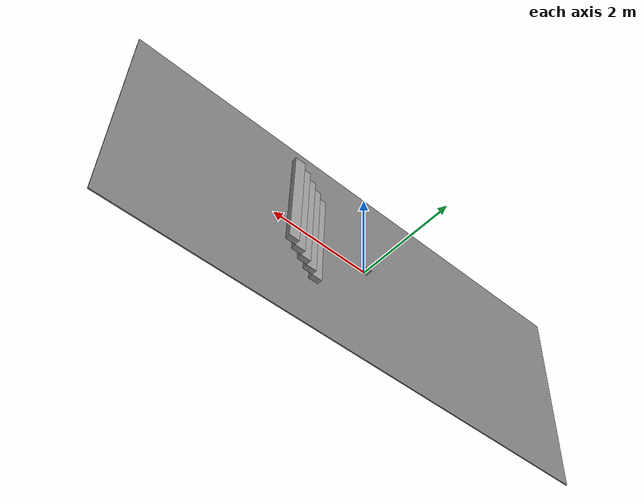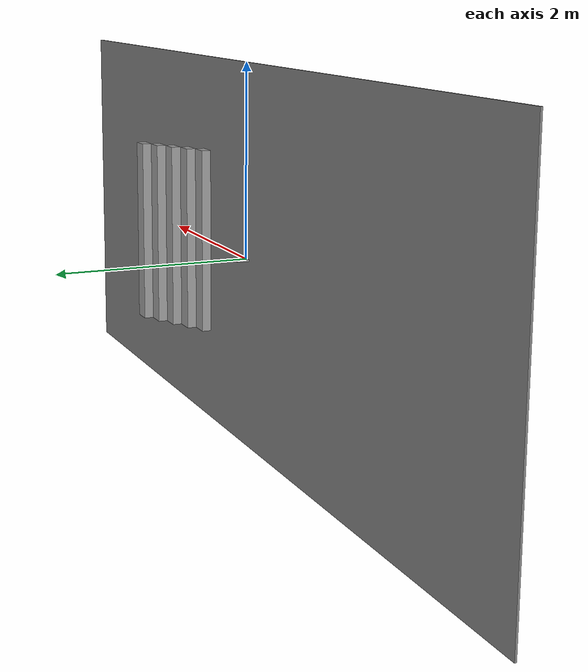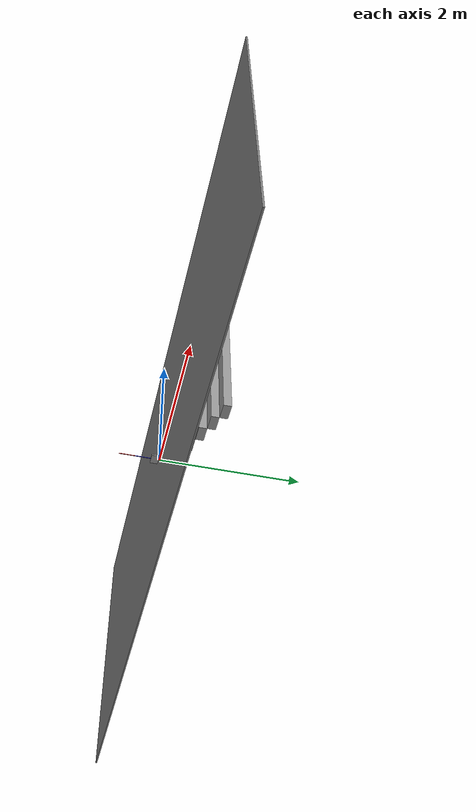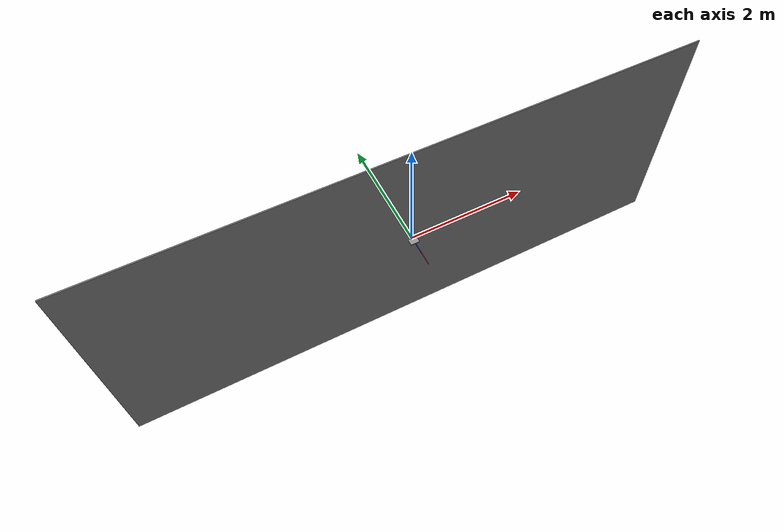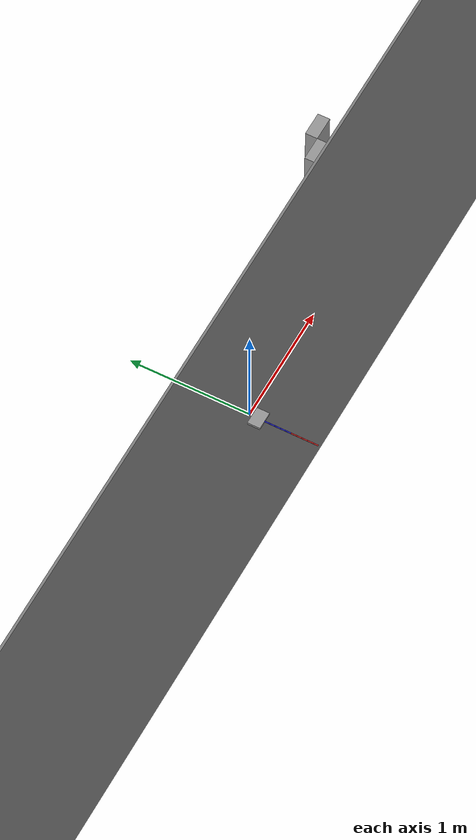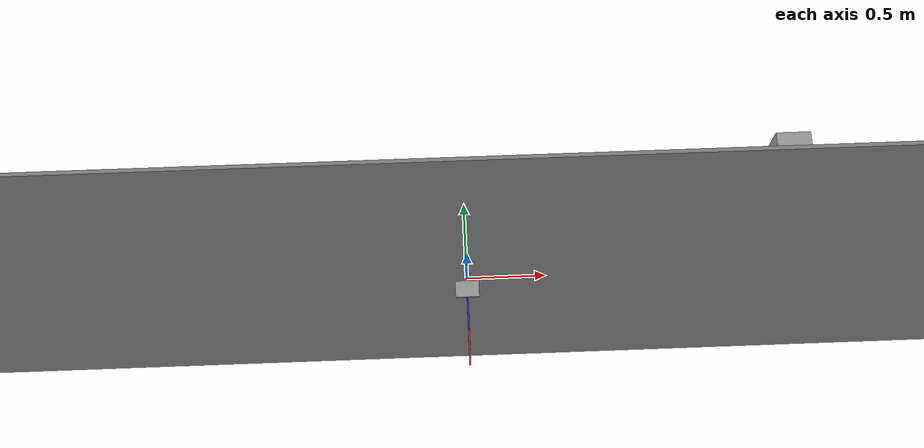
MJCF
<mujoco model="robot_stairs">

    <!--  set the values -kp^ground and -kd^ground  -->
    <option timestep="0.001" o_solref="-100000 -1000" gravity="0 -9.81 0">
        <flag override="enable"/>
    </option>

    <default>
        <geom contype="1" conaffinity="1" friction="0.5 0 0"/> <!-- slide (dynamic), spin(0), roll (0)-->
        <joint type="hinge" damping="0.5"/> <!-- add joint damping-->
    </default>

    <asset>
        <material name="groundplane" rgba="0.5 0.5 0.5 1"/>
        <material name="gray" rgba="0.6 0.6 0.6 1"/>
        <material name="blue" rgba="0.2 0.2 1 1"/>
        <material name="red" rgba="1 0.2 0.2 1"/>
        <material name="yellow" rgba="1 1 0.3 1"/>
        <material name="green" rgba="0 1 0 0.5"/>
    </asset>

    <worldbody>
        <light pos="0 0 2" dir="0 -1 -1" directional="true"/>

        <!-- Ground in XZ plane at Y=0 -->
        <body pos="0 0 0">
            <geom name="floor" type="box" size="5 0.01 2" pos="0 -0.01 0" material="groundplane" />
        </body>

        <!-- STAIRS starting 1 m in front of robot -->
        <body name="stairs" pos="1 0 0">

            <!-- Step 1: rise 0.10, run 0.20 -->
            <geom type="box"
                size="0.10 0.05 1.0"
                pos="0.10 0.05 0"
                material="gray"/>

            <!-- Step 2 -->
            <geom type="box"
                size="0.10 0.05 1.0"
                pos="0.30 0.15 0"
                material="gray"/>

            <!-- Step 3 -->
            <geom type="box"
                size="0.10 0.05 1.0"
                pos="0.50 0.25 0"
                material="gray"/>

            <!-- Step 4 -->
            <geom type="box"
                size="0.10 0.05 1.0"
                pos="0.70 0.35 0"
                material="gray"/>

            <!-- Step 5 -->
            <geom type="box"
                size="0.10 0.05 1.0"
                pos="0.90 0.45 0"
                material="gray"/>
        </body>

        <!-- Body (trunk) -->
        <body name="trunk" pos="0 0 0">
            <!-- trunk intertia-->
            <inertial pos="0 0 0" mass="8" diaginertia="0.0567 0.0567 0.0567"/>

            <!-- planar motion of trunk-->
            <joint name="x" type="slide" axis="1 0 0"/>
            <joint name="y" type="slide" axis="0 1 0"/>
            <joint name="theta" type="hinge" axis="0 0 1"/>

            <!-- Trunk geometry (COM) - contype 2 for trunk-->
            <geom name="trunk_geom" type="box" size="0.075 0.125 0.01" material="gray" contype="2" conaffinity="2"/>
            <!-- width=0.15/2=0.075, height=0.25/2=0.125 -->

            <!-- Leg 1 - contype 4, conaffinity 5 (collides with ground=1 and trunk=2) -->
            <body name="leg_1" pos="0 -0.125 0"> <!-- located at base of trunk in Y axis, centered in X-->
                <inertial pos="0 -0.11 0" mass="0.25" diaginertia="0.001 1e-6 0.001"/> <!-- set the mass properties relative to body frame-->
                <joint name="q1" type="hinge" axis="0 0 1" limited="true" range="-120 30"/>
                <geom name="leg_1_geom" type="capsule" fromto="0 0 0 0 -0.22 0" size="0.005" material="blue" contype="4" conaffinity="3"/>

                <!-- leg 2 -->
                <body name="leg_2" pos="0 -0.22 0"> <!-- position relative to parent frame (l1)-->
                    <inertial pos="0 -0.11 0" mass="0.25" diaginertia="0.001 1e-6 0.001"/>
                    <joint name="q2" type="hinge" axis="0 0 1" limited="true" range="0 160"/>
                    <geom name="leg_2_geom" type="capsule" fromto="0 0 0 0 -0.22 0" size="0.005" material="red" contype="4" conaffinity="3"/>
                </body>
            </body>

            <!-- leg 3 - contype 8, conaffinity 9 (collides with ground=1 and trunk=2) -->
            <body name="leg_3" pos="0 -0.125 0">
                <inertial pos="0 -0.11 0" mass="0.25" diaginertia="0.001 1e-6 0.001"/>
                <joint name="q3" type="hinge" axis="0 0 1" limited="true" range="-120 30"/>
                <geom name="leg_3_geom" type="capsule" fromto="0 0 0 0 -0.22 0" size="0.005" material="green" contype="8" conaffinity="3"/>

                <!-- leg 4 -->
                <body name="leg_4" pos="0 -0.22 0">
                    <inertial pos="0 -0.11 0" mass="0.25" diaginertia="0.001 1e-6 0.001"/>
                    <joint name="q4" type="hinge" axis="0 0 1" limited="true" range="0 160"/>
                    <geom name="leg_4_geom" type="capsule" fromto="0 0 0 0 -0.22 0" size="0.005" material="yellow" contype="8" conaffinity="3"/>
                </body>
            </body>
        </body>
    </worldbody>

    <actuator>
        <!-- assign actuatores to joints -->
        <motor name="act_q1" joint="q1" gear="1"/>
        <motor name="act_q2" joint="q2" gear="1"/>
        <motor name="act_q3" joint="q3" gear="1"/>
        <motor name="act_q4" joint="q4" gear="1"/>
    </actuator>

</mujoco>
